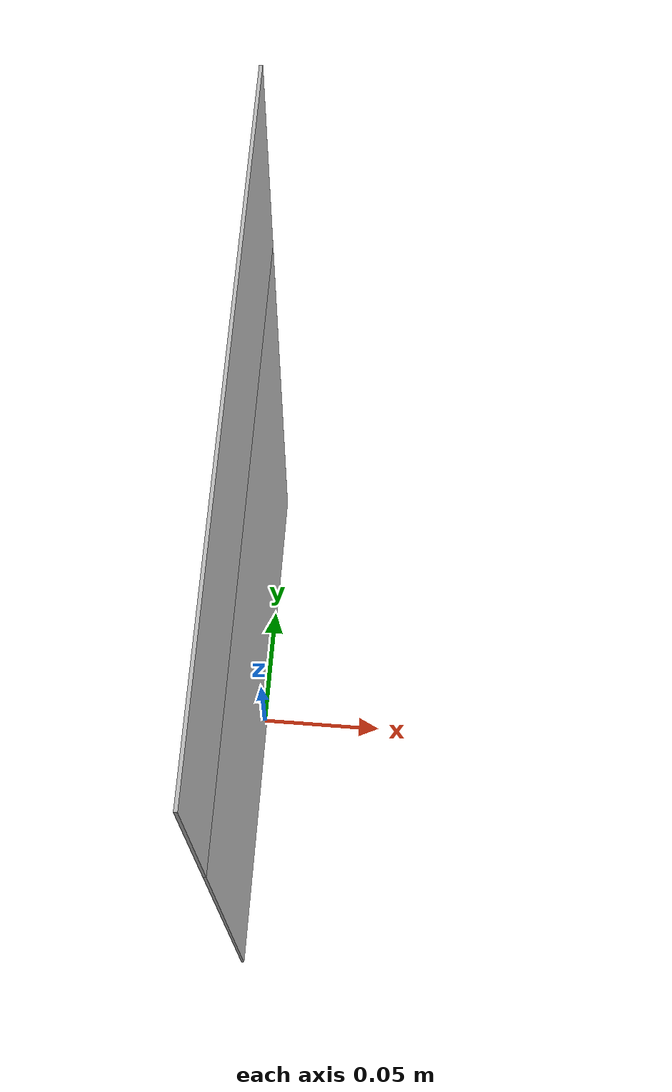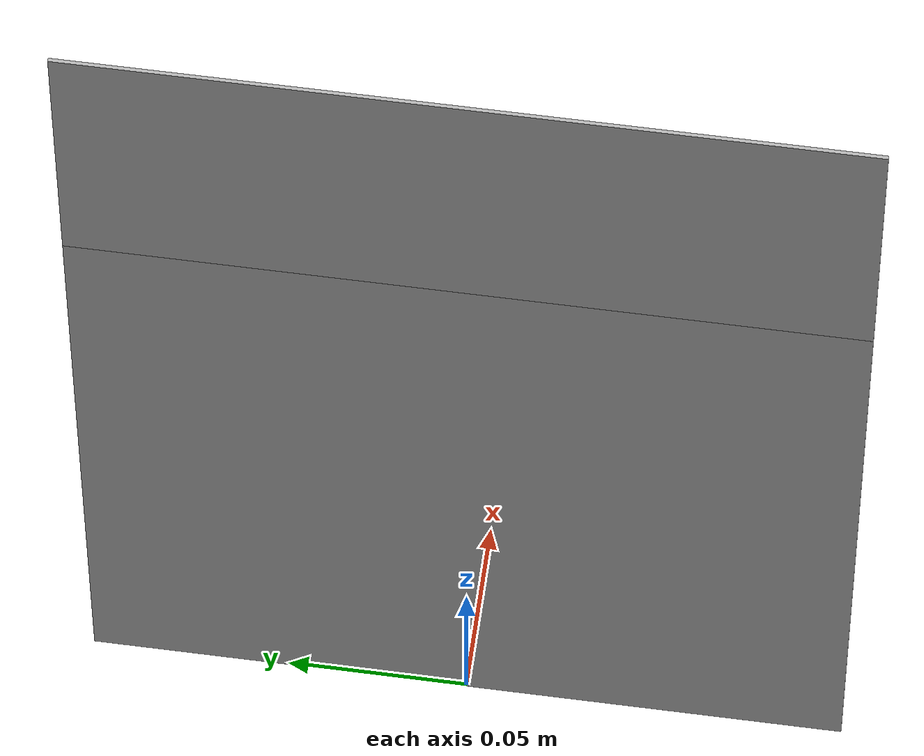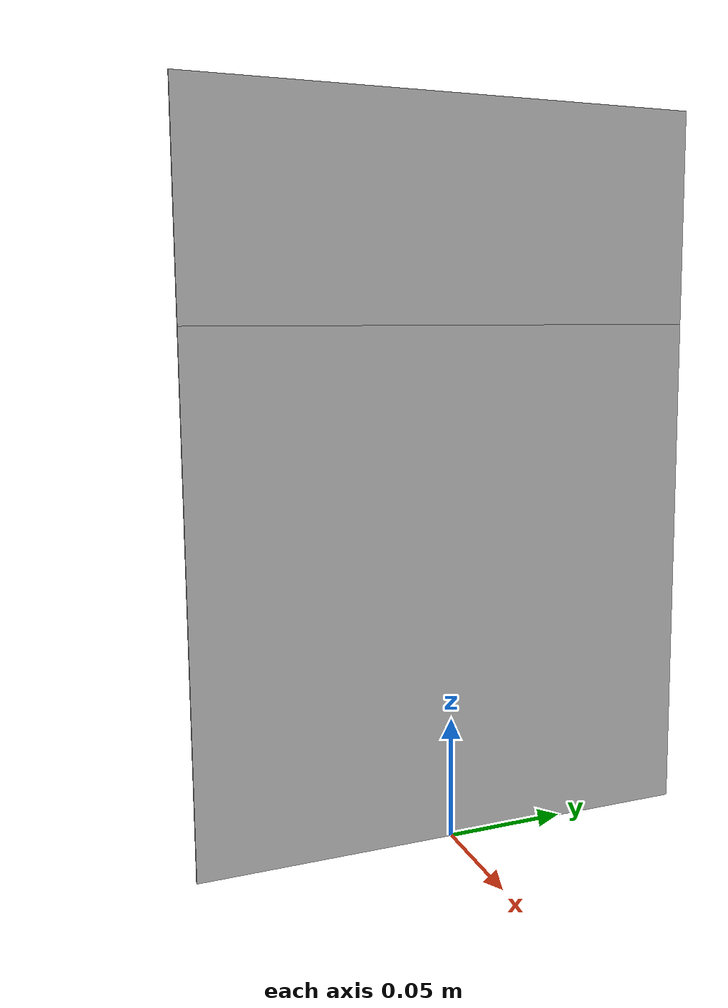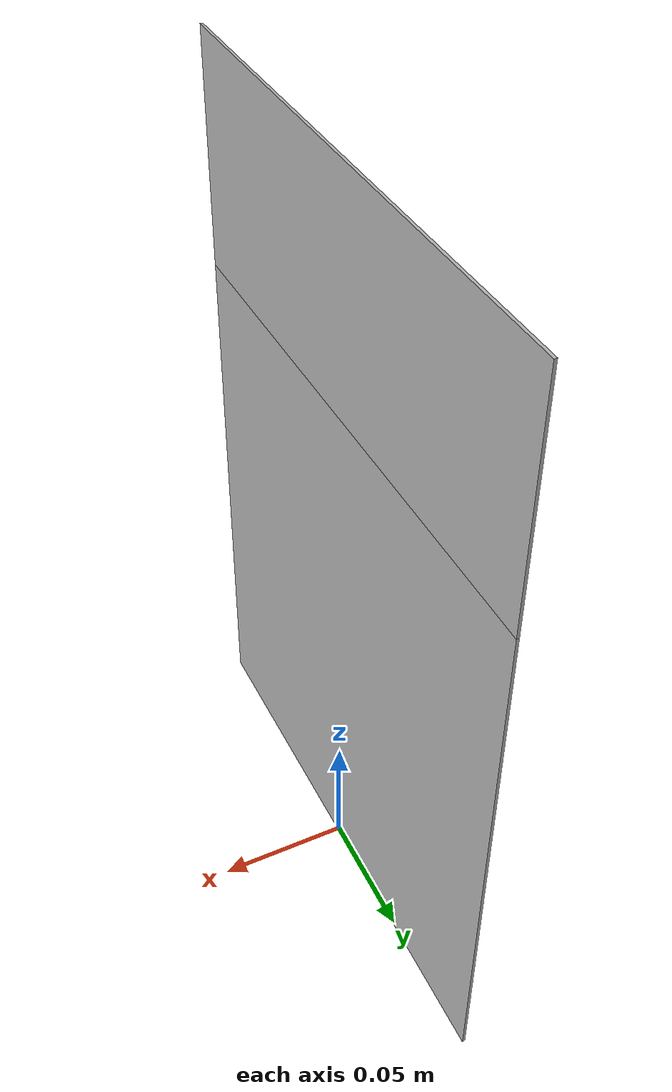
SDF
<?xml version="1.0" ?>
<sdf version="1.0">
  <model name="info_plate">
    <static>true</static>
    <link name="info_plate">
      <collision name="info_plate">
        <pose>0 0 .1485 0 0 0</pose>
        <geometry>
          <box>
            <size>
              0.001 .21 .297
            </size>
          </box>
        </geometry>
      </collision>

      <visual name="info_plate_upper">
        <pose>0 0 .2535 0 0 0</pose>
        <geometry>
          <box>
            <size>
              0.001 .21 .087
            </size>
          </box>
        </geometry>
        <material>
          <script>
            <uri>model://info_plate/materials/scripts</uri>
            <uri>model://info_plate/materials/textures</uri>
            <name>Room/S1</name>
            <name><!-- Gazebo/Red --></name>
          </script>
        </material>
      </visual>

      <visual name="info_plate_lower">
        <pose>0 0 .105 0 0 0</pose>
        <geometry>
          <box>
            <size>
              0.001 .21 .21
            </size>
          </box>
        </geometry>
        <material>
          <script>
            <uri>model://info_plate/materials/scripts</uri>
            <uri>model://info_plate/materials/textures</uri>
            <name>QR_Room/S1</name>
          </script>
        </material>
      </visual>
    </link>
  </model>
</sdf>
